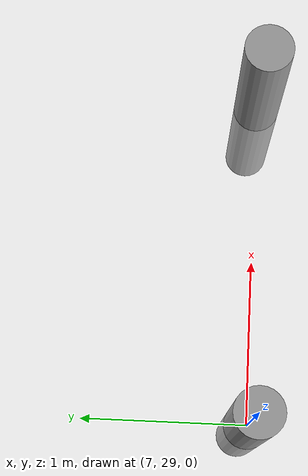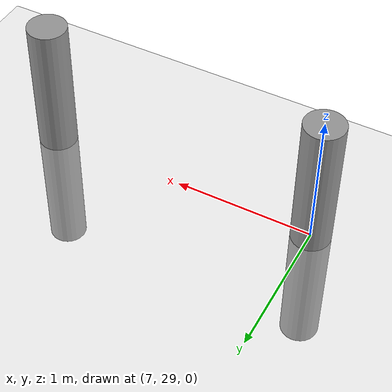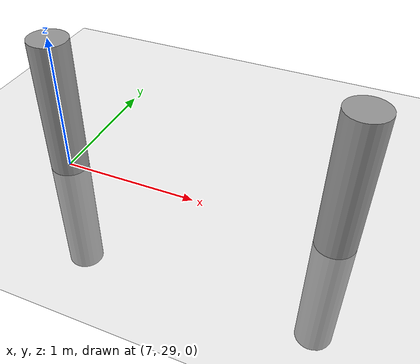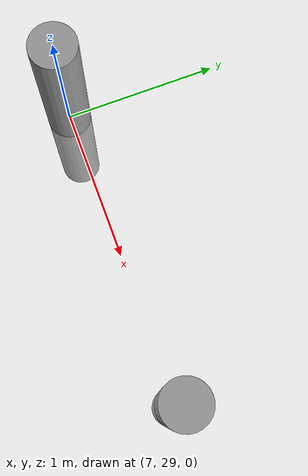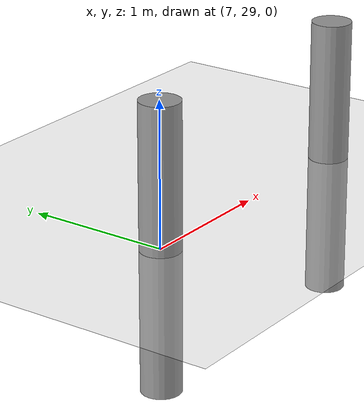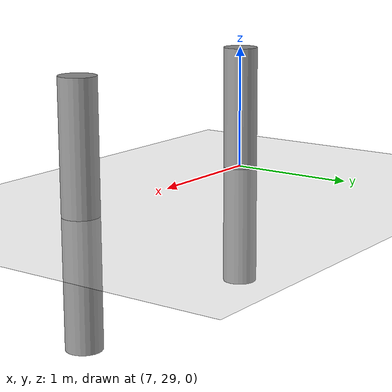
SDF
<sdf version="1.6">
 <world name="default">
  <model name="ground_plane">
   <static>1</static>
   <link name="link">
    <collision name="collision">
     <geometry><plane><normal>0 0 1</normal><size>100 100</size></plane></geometry>
     <surface><friction><ode><mu>100</mu><mu2>50</mu2></ode></friction></surface>
    </collision>
    <visual name="visual">
     <cast_shadows>0</cast_shadows>
     <geometry><plane><normal>0 0 1</normal><size>100 100</size></plane></geometry>
     <material>
      <script><uri>file://media/materials/scripts/gazebo.material</uri><name>Gazebo/Grey</name></script>
     </material>
    </visual>
   </link>
  </model>
  <model name="my_cylinder014_clone_44_0">
   <pose>9 29 0 0 -0 0</pose>
   <link name="my_cylinder014::link">
    <inertial>
     <mass>1</mass>
     <inertia><ixx>0.145833</ixx><ixy>0</ixy><ixz>0</ixz><iyy>0.145833</iyy><iyz>0</iyz><izz>0.125</izz></inertia>
    </inertial>
    <visual name="visual">
     <geometry><cylinder><radius>0.14</radius><length>2</length></cylinder></geometry>
     <material>
      <script><name>Gazebo/Grey</name><uri>file://media/materials/scripts/gazebo.material</uri></script>
      <ambient>0.3 0.3 0.3 1</ambient>
      <diffuse>0.7 0.7 0.7 1</diffuse>
      <specular>1 0.01 0.01 1</specular>
      <emissive>0 0 0 1</emissive>
      <shader type="vertex"><normal_map>__default__</normal_map></shader>
     </material>
    </visual>
    <collision name="collision">
     <geometry><cylinder><radius>0.14</radius><length>2</length></cylinder></geometry>
     <surface>
      <friction>
       <ode><mu>1</mu><mu2>1</mu2><fdir1>0 0 0</fdir1><slip1>0</slip1><slip2>0</slip2></ode>
       <torsional>
        <coefficient>1</coefficient>
        <patch_radius>0</patch_radius>
        <surface_radius>0</surface_radius>
        <use_patch_radius>1</use_patch_radius>
        <ode><slip>0</slip></ode>
       </torsional>
      </friction>
      <bounce><restitution_coefficient>0</restitution_coefficient><threshold>1e+06</threshold></bounce>
      <contact>
       <collide_without_contact>0</collide_without_contact>
       <collide_without_contact_bitmask>1</collide_without_contact_bitmask>
       <collide_bitmask>1</collide_bitmask>
       <ode>
        <soft_cfm>0</soft_cfm>
        <soft_erp>0.2</soft_erp>
        <kp>1e+13</kp>
        <kd>1</kd>
        <max_vel>0.01</max_vel>
        <min_depth>0</min_depth>
       </ode>
       <bullet>
        <split_impulse>1</split_impulse>
        <split_impulse_penetration_threshold>-0.01</split_impulse_penetration_threshold>
        <soft_cfm>0</soft_cfm>
        <soft_erp>0.2</soft_erp>
        <kp>1e+13</kp>
        <kd>1</kd>
       </bullet>
      </contact>
     </surface>
    </collision>
   </link>
   <static>1</static>
  </model>
  <model name="my_cylinder014_clone_43_1">
   <pose>7 29 0 0 -0 0</pose>
   <link name="my_cylinder014::link">
    <inertial>
     <mass>1</mass>
     <inertia><ixx>0.145833</ixx><ixy>0</ixy><ixz>0</ixz><iyy>0.145833</iyy><iyz>0</iyz><izz>0.125</izz></inertia>
    </inertial>
    <visual name="visual">
     <geometry><cylinder><radius>0.14</radius><length>2</length></cylinder></geometry>
     <material>
      <script><name>Gazebo/Grey</name><uri>file://media/materials/scripts/gazebo.material</uri></script>
      <ambient>0.3 0.3 0.3 1</ambient>
      <diffuse>0.7 0.7 0.7 1</diffuse>
      <specular>1 0.01 0.01 1</specular>
      <emissive>0 0 0 1</emissive>
      <shader type="vertex"><normal_map>__default__</normal_map></shader>
     </material>
    </visual>
    <collision name="collision">
     <geometry><cylinder><radius>0.14</radius><length>2</length></cylinder></geometry>
     <surface>
      <friction>
       <ode><mu>1</mu><mu2>1</mu2><fdir1>0 0 0</fdir1><slip1>0</slip1><slip2>0</slip2></ode>
       <torsional>
        <coefficient>1</coefficient>
        <patch_radius>0</patch_radius>
        <surface_radius>0</surface_radius>
        <use_patch_radius>1</use_patch_radius>
        <ode><slip>0</slip></ode>
       </torsional>
      </friction>
      <bounce><restitution_coefficient>0</restitution_coefficient><threshold>1e+06</threshold></bounce>
      <contact>
       <collide_without_contact>0</collide_without_contact>
       <collide_without_contact_bitmask>1</collide_without_contact_bitmask>
       <collide_bitmask>1</collide_bitmask>
       <ode>
        <soft_cfm>0</soft_cfm>
        <soft_erp>0.2</soft_erp>
        <kp>1e+13</kp>
        <kd>1</kd>
        <max_vel>0.01</max_vel>
        <min_depth>0</min_depth>
       </ode>
       <bullet>
        <split_impulse>1</split_impulse>
        <split_impulse_penetration_threshold>-0.01</split_impulse_penetration_threshold>
        <soft_cfm>0</soft_cfm>
        <soft_erp>0.2</soft_erp>
        <kp>1e+13</kp>
        <kd>1</kd>
       </bullet>
      </contact>
     </surface>
    </collision>
   </link>
   <static>1</static>
  </model>
  <model name="my_cylinder014_clone_43_1">
   <pose>7 29 0 0 -0 0</pose>
   <link name="my_cylinder014::link">
    <inertial>
     <mass>1</mass>
     <inertia><ixx>0.145833</ixx><ixy>0</ixy><ixz>0</ixz><iyy>0.145833</iyy><iyz>0</iyz><izz>0.125</izz></inertia>
    </inertial>
    <visual name="visual">
     <geometry><cylinder><radius>0.14</radius><length>2</length></cylinder></geometry>
     <material>
      <script><name>Gazebo/Grey</name><uri>file://media/materials/scripts/gazebo.material</uri></script>
      <ambient>0.3 0.3 0.3 1</ambient>
      <diffuse>0.7 0.7 0.7 1</diffuse>
      <specular>1 0.01 0.01 1</specular>
      <emissive>0 0 0 1</emissive>
      <shader type="vertex"><normal_map>__default__</normal_map></shader>
     </material>
    </visual>
    <collision name="collision">
     <geometry><cylinder><radius>0.14</radius><length>2</length></cylinder></geometry>
     <surface>
      <friction>
       <ode><mu>1</mu><mu2>1</mu2><fdir1>0 0 0</fdir1><slip1>0</slip1><slip2>0</slip2></ode>
       <torsional>
        <coefficient>1</coefficient>
        <patch_radius>0</patch_radius>
        <surface_radius>0</surface_radius>
        <use_patch_radius>1</use_patch_radius>
        <ode><slip>0</slip></ode>
       </torsional>
      </friction>
      <bounce><restitution_coefficient>0</restitution_coefficient><threshold>1e+06</threshold></bounce>
      <contact>
       <collide_without_contact>0</collide_without_contact>
       <collide_without_contact_bitmask>1</collide_without_contact_bitmask>
       <collide_bitmask>1</collide_bitmask>
       <ode>
        <soft_cfm>0</soft_cfm>
        <soft_erp>0.2</soft_erp>
        <kp>1e+13</kp>
        <kd>1</kd>
        <max_vel>0.01</max_vel>
        <min_depth>0</min_depth>
       </ode>
       <bullet>
        <split_impulse>1</split_impulse>
        <split_impulse_penetration_threshold>-0.01</split_impulse_penetration_threshold>
        <soft_cfm>0</soft_cfm>
        <soft_erp>0.2</soft_erp>
        <kp>1e+13</kp>
        <kd>1</kd>
       </bullet>
      </contact>
     </surface>
    </collision>
   </link>
   <static>1</static>
  </model>
 </world>
</sdf>
